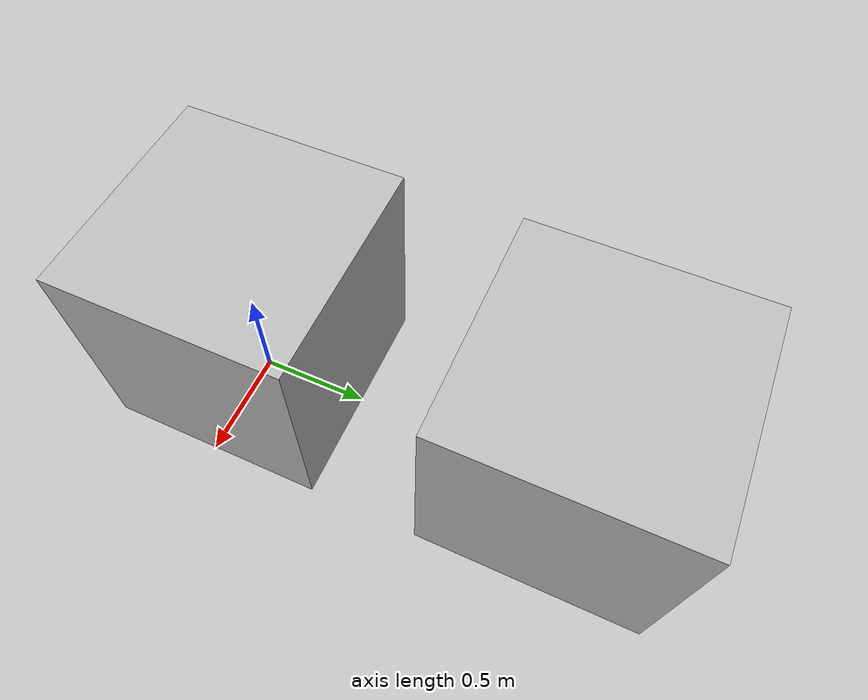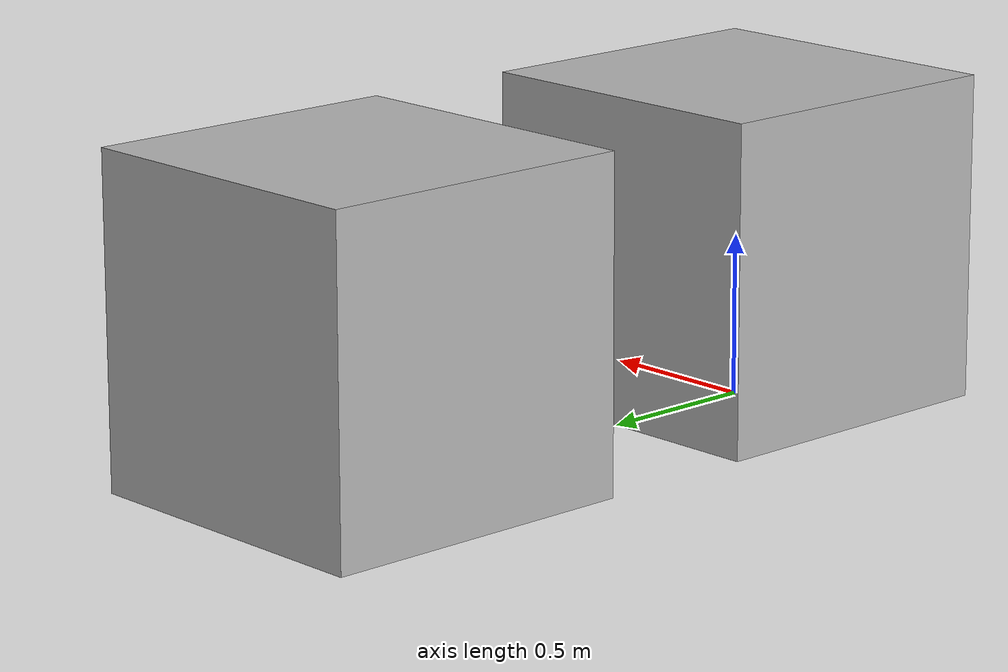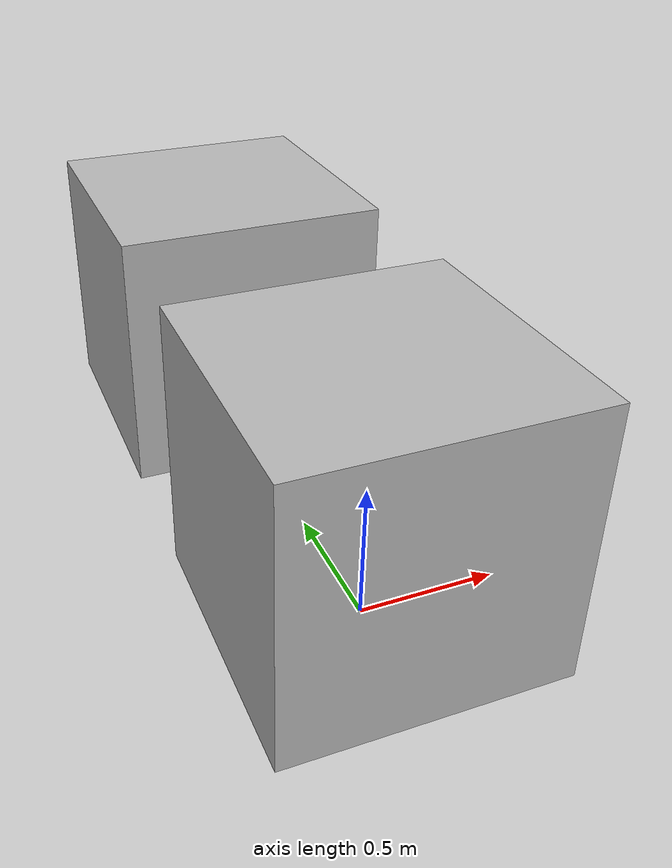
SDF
<?xml version="1.0" ?>
<sdf version="1.4">
  <model name="box_test">
    <static>false</static>
    <link name="link0">
      <pose>0 0 0.5 0 0 0</pose>
      <inertial>
        <pose>.4 0 0 0 0 0</pose>
        <mass>300.0</mass>
        <inertia>
          <ixx>0.041667</ixx> <ixy>0.0</ixy> <ixz>0.0</ixz>
          <iyy>0.041667</iyy> <iyz>0.0</iyz>
          <izz>0.041667</izz>
        </inertia>
      </inertial>
      <collision name="collision">
        <geometry>
          <box>
            <size>1.0 1.0 1.0</size>
          </box>
        </geometry>
        <surface>
          <contact>
            <ode>
              <kp>1000000.000000</kp>
              <kd>100.000000</kd>
              <max_vel>1.000000</max_vel>
              <min_depth>0.000000</min_depth>
            </ode>
          </contact>
          <friction>
            <ode>
              <mu>1.000000</mu>
              <mu2>1.000000</mu2>
              <fdir1>1.000000 0.000000 0.000000</fdir1>
            </ode>
          </friction>
        </surface>
        <surface>
          <contact>
            <ode/>
          </contact>
          <friction>
            <ode/>
          </friction>
        </surface>
      </collision>
      <visual name="visual">
        <geometry>
          <box>
            <size>1.0 1.0 1.0</size>
          </box>
        </geometry>
      </visual>
    </link>
    <link name="link1">
      <pose>0 1.5 0.5 0 0 0</pose>
      <inertial>
        <pose>.4 0 0 0 0 0</pose>
        <mass>300.0</mass>
        <inertia>
          <ixx>0.041667</ixx> <ixy>0.0</ixy> <ixz>0.0</ixz>
          <iyy>0.041667</iyy> <iyz>0.0</iyz>
          <izz>0.041667</izz>
        </inertia>
      </inertial>
      <collision name="collision">
        <geometry>
          <box>
            <size>1.0 1.0 1.0</size>
          </box>
        </geometry>
        <surface>
          <contact>
            <ode>
              <kp>1000000.000000</kp>
              <kd>100.000000</kd>
              <max_vel>1.000000</max_vel>
              <min_depth>0.000000</min_depth>
            </ode>
          </contact>
          <friction>
            <ode>
              <mu>0.000000</mu>
              <mu2>0.000000</mu2>
              <fdir1>1.000000 0.000000 0.000000</fdir1>
            </ode>
          </friction>
        </surface>
        <surface>
          <contact>
            <ode/>
          </contact>
          <friction>
            <ode/>
          </friction>
        </surface>
      </collision>
      <visual name="visual">
        <geometry>
          <box>
            <size>1.0 1.0 1.0</size>
          </box>
        </geometry>
      </visual>
    </link>
    <allow_auto_disable>false</allow_auto_disable>
  </model>
</sdf>
